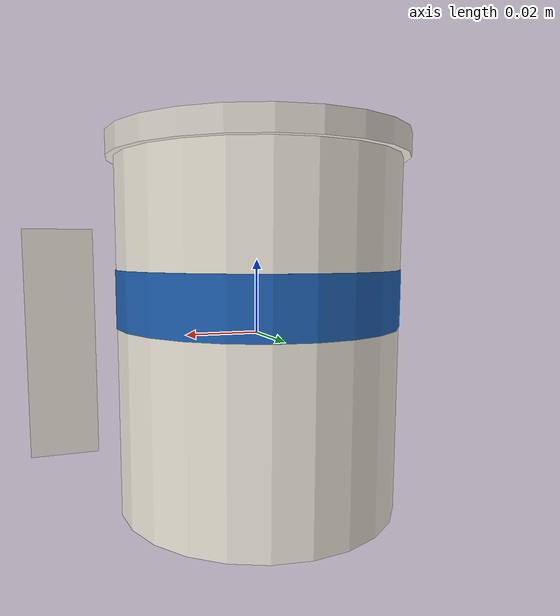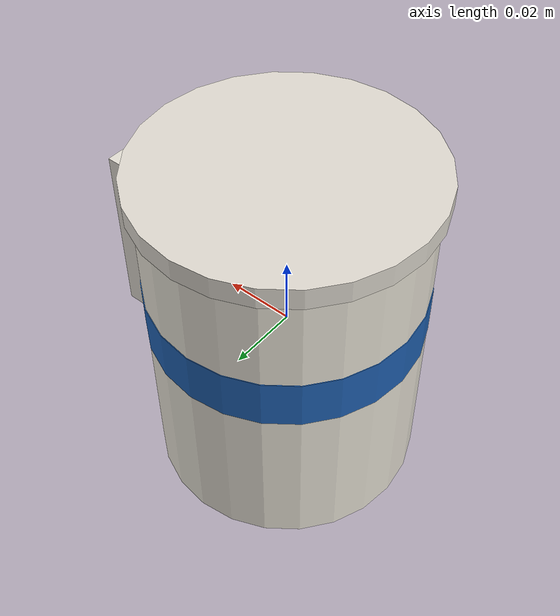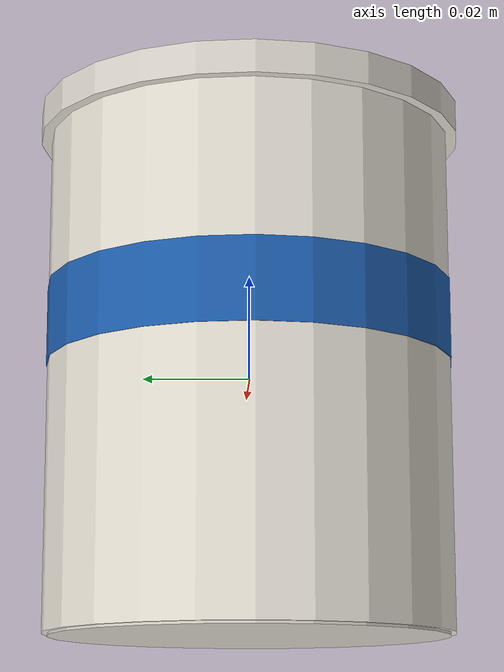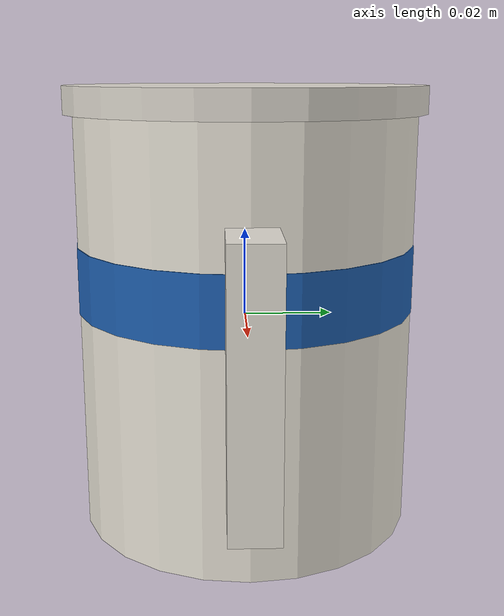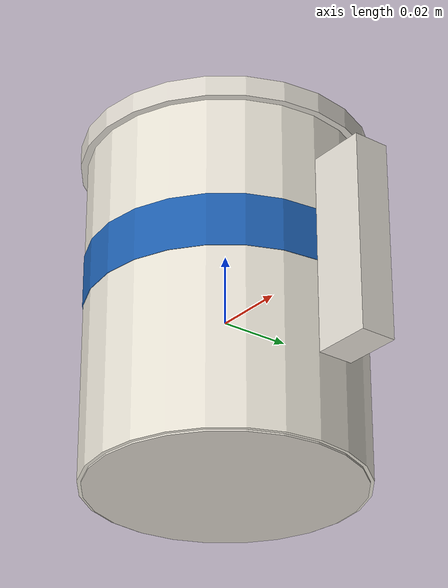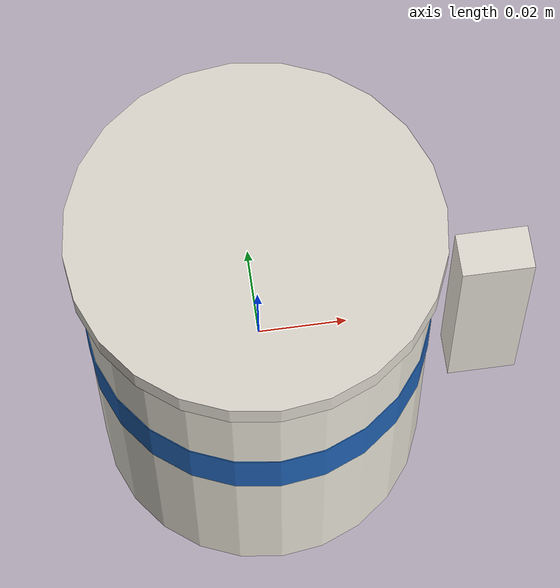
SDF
<?xml version="1.0" ?>
<sdf version="1.6">
  <model name="my_coffee_cup">

    <link name="link">

      <!-- ══ INERTIA (realistic 300g mug) ══ -->
      <inertial>
        <mass>0.3</mass>
        <inertia>
          <ixx>0.000350</ixx>
          <ixy>0.0</ixy>
          <ixz>0.0</ixz>
          <iyy>0.000350</iyy>
          <iyz>0.0</iyz>
          <izz>0.000220</izz>
        </inertia>
      </inertial>

      <!-- ══ VISUAL: MUG BODY ══ -->
      <visual name="body_visual">
        <pose>0 0 0 0 0 0</pose>
        <geometry>
          <cylinder>
            <radius>0.038</radius>
            <length>0.095</length>
          </cylinder>
        </geometry>
        <material>
          <!-- Creamy white ceramic -->
          <ambient>0.95 0.94 0.90 1.0</ambient>
          <diffuse>0.92 0.90 0.85 1.0</diffuse>
          <specular>0.4 0.4 0.4 1.0</specular>
          <emissive>0.0 0.0 0.0 1.0</emissive>
        </material>
      </visual>

      <!-- ══ VISUAL: MUG LIP (top ring) ══ -->
      <visual name="lip_visual">
        <pose>0 0 0.049 0 0 0</pose>
        <geometry>
          <cylinder>
            <radius>0.040</radius>
            <length>0.006</length>
          </cylinder>
        </geometry>
        <material>
          <ambient>0.90 0.88 0.84 1.0</ambient>
          <diffuse>0.88 0.86 0.82 1.0</diffuse>
          <specular>0.5 0.5 0.5 1.0</specular>
        </material>
      </visual>

      <!-- ══ VISUAL: MUG BASE (thicker bottom) ══ -->
      <visual name="base_visual">
        <pose>0 0 -0.043 0 0 0</pose>
        <geometry>
          <cylinder>
            <radius>0.037</radius>
            <length>0.010</length>
          </cylinder>
        </geometry>
        <material>
          <ambient>0.88 0.86 0.82 1.0</ambient>
          <diffuse>0.85 0.83 0.79 1.0</diffuse>
          <specular>0.3 0.3 0.3 1.0</specular>
        </material>
      </visual>

      <!-- ══ VISUAL: HANDLE ══ -->
      <visual name="handle_outer_visual">
        <pose>0.052 0 0.0 0 0 0</pose>
        <geometry>
          <box>
            <size>0.016 0.010 0.055</size>
          </box>
        </geometry>
        <material>
          <ambient>0.93 0.92 0.88 1.0</ambient>
          <diffuse>0.90 0.88 0.84 1.0</diffuse>
          <specular>0.4 0.4 0.4 1.0</specular>
        </material>
      </visual>

      <!-- ══ VISUAL: LOGO STRIPE (blue band around mug) ══ -->
      <visual name="stripe_visual">
        <pose>0 0 0.010 0 0 0</pose>
        <geometry>
          <cylinder>
            <radius>0.0382</radius>
            <length>0.015</length>
          </cylinder>
        </geometry>
        <material>
          <ambient>0.10 0.35 0.65 1.0</ambient>
          <diffuse>0.12 0.38 0.70 1.0</diffuse>
          <specular>0.2 0.2 0.2 1.0</specular>
        </material>
      </visual>

      <!-- ══ COLLISION: Main body ══ -->
      <collision name="body_collision">
        <pose>0 0 0 0 0 0</pose>
        <geometry>
          <cylinder>
            <radius>0.038</radius>
            <length>0.095</length>
          </cylinder>
        </geometry>
        <surface>
          <friction>
            <ode>
              <mu>0.8</mu>
              <mu2>0.8</mu2>
            </ode>
          </friction>
          <contact>
            <ode>
              <kp>1e6</kp>
              <kd>100</kd>
            </ode>
          </contact>
        </surface>
      </collision>

      <!-- ══ COLLISION: Handle ══ -->
      <collision name="handle_collision">
        <pose>0.052 0 0.0 0 0 0</pose>
        <geometry>
          <box>
            <size>0.016 0.010 0.055</size>
          </box>
        </geometry>
      </collision>

    </link>

  </model>
</sdf>
